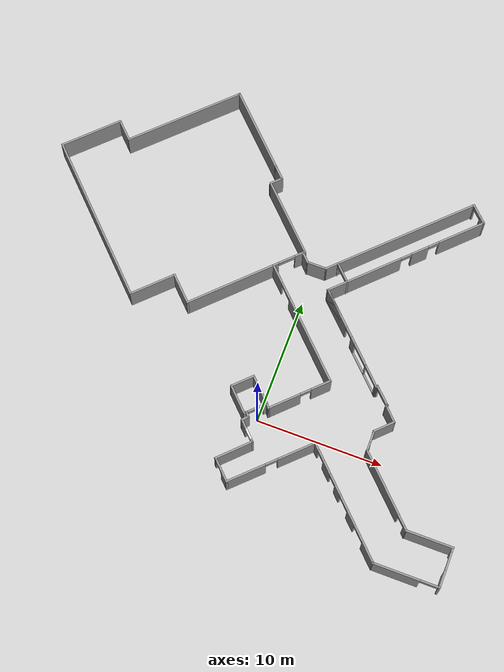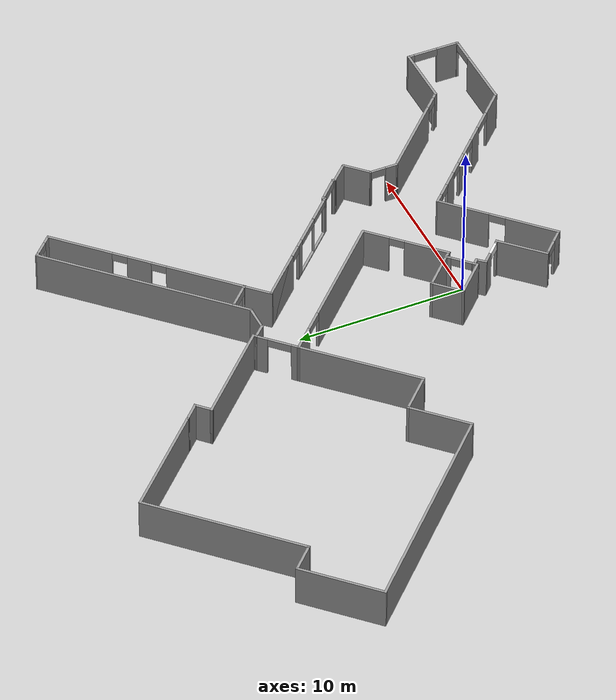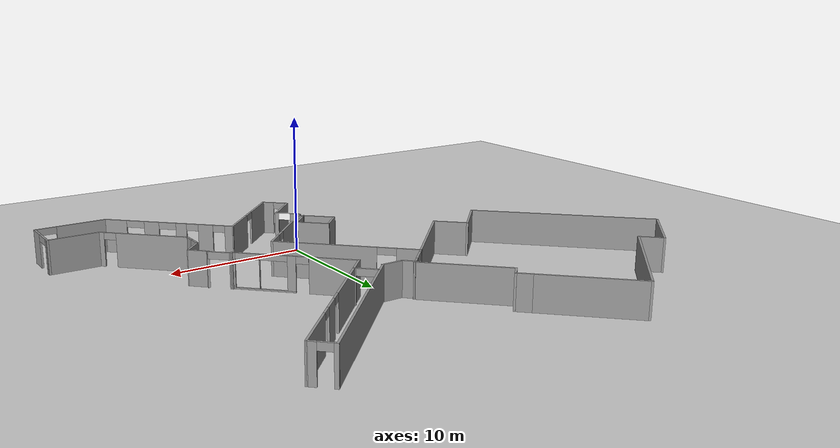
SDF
<sdf version="1.7">
 <world name="default">
  <light name="sun" type="directional">
   <pose>0 0 10 0 -0 0</pose>
   <diffuse>0.8 0.8 0.8 1</diffuse>
   <specular>0.2 0.2 0.2 1</specular>
   <attenuation>
    <range>1000</range>
    <constant>0.9</constant>
    <linear>0.01</linear>
    <quadratic>0.001</quadratic>
   </attenuation>
   <direction>-0.5 0.1 -0.9</direction>
   <spot><inner_angle>0</inner_angle><outer_angle>0</outer_angle><falloff>0</falloff></spot>
  </light>
  <model name="ground_plane">
   <static>1</static>
   <link name="link">
    <collision name="collision">
     <geometry><plane><normal>0 0 1</normal><size>100 100</size></plane></geometry>
     <surface><friction><ode><mu>100</mu><mu2>50</mu2></ode></friction></surface>
    </collision>
    <visual name="visual">
     <cast_shadows>0</cast_shadows>
     <geometry><plane><normal>0 0 1</normal><size>100 100</size></plane></geometry>
     <material>
      <script><uri>file://media/materials/scripts/gazebo.material</uri><name>Gazebo/Grey</name></script>
     </material>
    </visual>
   </link>
  </model>
  <gravity>0 0 -9.8</gravity>
  <magnetic_field>6e-06 2.3e-05 -4.2e-05</magnetic_field>
  <atmosphere type="adiabatic"/>
  <physics type="ode">
   <max_step_size>0.001</max_step_size>
   <real_time_factor>1</real_time_factor>
   <real_time_update_rate>1000</real_time_update_rate>
  </physics>
  <scene><ambient>0.4 0.4 0.4 1</ambient><background>0.7 0.7 0.7 1</background><shadows>1</shadows></scene>
  <audio><device>default</device></audio>
  <spherical_coordinates>
   <surface_model>EARTH_WGS84</surface_model>
   <latitude_deg>0</latitude_deg>
   <longitude_deg>0</longitude_deg>
   <elevation>0</elevation>
   <heading_deg>0</heading_deg>
  </spherical_coordinates>
  <model name="Arendal UETG">
   <pose>-2.58059 8.23058 0 0 -0 0</pose>
   <link name="Wall_1">
    <collision name="Wall_1_Collision">
     <geometry><box><size>2.5 0.15 2.5</size></box></geometry>
     <pose>0 0 1.25 0 -0 0</pose>
    </collision>
    <visual name="Wall_1_Visual">
     <pose>0 0 1.25 0 -0 0</pose>
     <geometry><box><size>2.5 0.15 2.5</size></box></geometry>
     <material>
      <script><uri>file://media/materials/scripts/gazebo.material</uri><name>Gazebo/Grey</name></script>
      <ambient>1 1 1 1</ambient>
     </material>
     <meta><layer>0</layer></meta>
    </visual>
    <pose>0.872614 -7.83837 0 0 -0 -0.785398</pose>
   </link>
   <link name="Wall_100">
    <collision name="Wall_100_Collision">
     <geometry><box><size>7.40567 0.15 2.5</size></box></geometry>
     <pose>0 0 1.25 0 -0 0</pose>
    </collision>
    <visual name="Wall_100_Visual">
     <pose>0 0 1.25 0 -0 0</pose>
     <geometry><box><size>7.40567 0.15 2.5</size></box></geometry>
     <material>
      <script><uri>file://media/materials/scripts/gazebo.material</uri><name>Gazebo/Grey</name></script>
      <ambient>1 1 1 1</ambient>
     </material>
     <meta><layer>0</layer></meta>
    </visual>
    <pose>-2.90681 0.604279 0 0 -0 0.789004</pose>
   </link>
   <link name="Wall_13">
    <pose>2.38064 -9.85032 0 0 -0 -0.785398</pose>
    <visual name="Wall_13_Visual_0">
     <pose>-0.594578 0 1.25 0 -0 0</pose>
     <geometry><box><size>0.810844 0.15 2.5</size></box></geometry>
     <material>
      <script><uri>file://media/materials/scripts/gazebo.material</uri><name>Gazebo/Grey</name></script>
      <ambient>1 1 1 1</ambient>
     </material>
     <meta><layer>0</layer></meta>
    </visual>
    <collision name="Wall_13_Collision_0">
     <geometry><box><size>0.810844 0.15 2.5</size></box></geometry>
     <pose>-0.594578 0 1.25 0 -0 0</pose>
    </collision>
    <visual name="Wall_13_Visual_1">
     <pose>0.855422 0 1.25 0 -0 0</pose>
     <geometry><box><size>0.289156 0.15 2.5</size></box></geometry>
     <material>
      <script><uri>file://media/materials/scripts/gazebo.material</uri><name>Gazebo/Grey</name></script>
      <ambient>1 1 1 1</ambient>
     </material>
     <meta><layer>0</layer></meta>
    </visual>
    <collision name="Wall_13_Collision_1">
     <geometry><box><size>0.289156 0.15 2.5</size></box></geometry>
     <pose>0.855422 0 1.25 0 -0 0</pose>
    </collision>
    <visual name="Wall_13_Visual_2">
     <pose>0.260844 0 2.25 0 -0 0</pose>
     <geometry><box><size>0.9 0.15 0.5</size></box></geometry>
     <material>
      <ambient>1 1 1 1</ambient>
      <diffuse>1 1 1 1</diffuse>
      <pbr>
       <metal>
        <albedo_map>file:///home/group4/YOLO_Datasets/Trolley/empty_trolley_vertical_cam1_20260211_142848.jpg</albedo_map>
       </metal>
      </pbr>
     </material>
     <meta><layer>0</layer></meta>
    </visual>
    <collision name="Wall_13_Collision_2">
     <geometry><box><size>0.9 0.15 0.5</size></box></geometry>
     <pose>0.260844 0 2.25 0 -0 0</pose>
    </collision>
   </link>
   <link name="Wall_14">
    <collision name="Wall_14_Collision">
     <geometry><box><size>3.1304 0.15 2.5</size></box></geometry>
     <pose>0 0 1.25 0 -0 0</pose>
    </collision>
    <visual name="Wall_14_Visual">
     <pose>0 0 1.25 0 -0 0</pose>
     <geometry><box><size>3.1304 0.15 2.5</size></box></geometry>
     <material>
      <script><uri>file://media/materials/scripts/gazebo.material</uri><name>Gazebo/Grey</name></script>
      <ambient>1 1 1 1</ambient>
     </material>
     <meta><layer>0</layer></meta>
    </visual>
    <pose>1.97947 -11.5623 0 0 -0 -2.35218</pose>
   </link>
   <link name="Wall_15">
    <pose>1.62701 -13.3097 0 0 -0 -0.785398</pose>
    <visual name="Wall_15_Visual_0">
     <pose>-0.926051 0 1.25 0 -0 0</pose>
     <geometry><box><size>0.247898 0.15 2.5</size></box></geometry>
     <material>
      <script><uri>file://media/materials/scripts/gazebo.material</uri><name>Gazebo/Grey</name></script>
      <ambient>1 1 1 1</ambient>
     </material>
     <meta><layer>0</layer></meta>
    </visual>
    <collision name="Wall_15_Collision_0">
     <geometry><box><size>0.247898 0.15 2.5</size></box></geometry>
     <pose>-0.926051 0 1.25 0 -0 0</pose>
    </collision>
    <visual name="Wall_15_Visual_1">
     <pose>0.573949 0 1.25 0 -0 0</pose>
     <geometry><box><size>0.952102 0.15 2.5</size></box></geometry>
     <material>
      <script><uri>file://media/materials/scripts/gazebo.material</uri><name>Gazebo/Grey</name></script>
      <ambient>1 1 1 1</ambient>
     </material>
     <meta><layer>0</layer></meta>
    </visual>
    <collision name="Wall_15_Collision_1">
     <geometry><box><size>0.952102 0.15 2.5</size></box></geometry>
     <pose>0.573949 0 1.25 0 -0 0</pose>
    </collision>
    <visual name="Wall_15_Visual_2">
     <pose>-0.352102 0 2.25 0 -0 0</pose>
     <geometry><box><size>0.9 0.15 0.5</size></box></geometry>
     <material>
      <script><uri>file://media/materials/scripts/gazebo.material</uri><name>Gazebo/Grey</name></script>
      <ambient>1 1 1 1</ambient>
     </material>
     <meta><layer>0</layer></meta>
    </visual>
    <collision name="Wall_15_Collision_2">
     <geometry><box><size>0.9 0.15 0.5</size></box></geometry>
     <pose>-0.352102 0 2.25 0 -0 0</pose>
    </collision>
   </link>
   <link name="Wall_17">
    <pose>4.8759 -11.4735 0 0 -0 0.777263</pose>
    <visual name="Wall_17_Visual_0">
     <pose>-2.06667 0 1.25 0 -0 0</pose>
     <geometry><box><size>3.21906 0.15 2.5</size></box></geometry>
     <material>
      <script><uri>file://media/materials/scripts/gazebo.material</uri><name>Gazebo/Grey</name></script>
      <ambient>1 1 1 1</ambient>
     </material>
     <meta><layer>0</layer></meta>
    </visual>
    <collision name="Wall_17_Collision_0">
     <geometry><box><size>3.21906 0.15 2.5</size></box></geometry>
     <pose>-2.06667 0 1.25 0 -0 0</pose>
    </collision>
    <visual name="Wall_17_Visual_1">
     <pose>2.10276 0 1.25 0 -0 0</pose>
     <geometry><box><size>3.14688 0.15 2.5</size></box></geometry>
     <material>
      <script><uri>file://media/materials/scripts/gazebo.material</uri><name>Gazebo/Grey</name></script>
      <ambient>1 1 1 1</ambient>
     </material>
     <meta><layer>0</layer></meta>
    </visual>
    <collision name="Wall_17_Collision_1">
     <geometry><box><size>3.14688 0.15 2.5</size></box></geometry>
     <pose>2.10276 0 1.25 0 -0 0</pose>
    </collision>
    <visual name="Wall_17_Visual_2">
     <pose>0.036092 0 2.25 0 -0 0</pose>
     <geometry><box><size>0.986468 0.15 0.5</size></box></geometry>
     <material>
      <script><uri>file://media/materials/scripts/gazebo.material</uri><name>Gazebo/Grey</name></script>
      <ambient>1 1 1 1</ambient>
     </material>
     <meta><layer>0</layer></meta>
    </visual>
    <collision name="Wall_17_Collision_2">
     <geometry><box><size>0.986468 0.15 0.5</size></box></geometry>
     <pose>0.036092 0 2.25 0 -0 0</pose>
    </collision>
   </link>
   <link name="Wall_19">
    <pose>10.9255 -12.4304 0 0 -0 -0.785398</pose>
    <visual name="Wall_19_Visual_0">
     <pose>-4.66999 0 1.25 0 -0 0</pose>
     <geometry><box><size>0.660029 0.15 2.5</size></box></geometry>
     <material>
      <script><uri>file://media/materials/scripts/gazebo.material</uri><name>Gazebo/Grey</name></script>
      <ambient>1 1 1 1</ambient>
     </material>
     <meta><layer>0</layer></meta>
    </visual>
    <collision name="Wall_19_Collision_0">
     <geometry><box><size>0.660029 0.15 2.5</size></box></geometry>
     <pose>-4.66999 0 1.25 0 -0 0</pose>
    </collision>
    <visual name="Wall_19_Visual_1">
     <pose>-2.88465 0 1.25 0 -0 0</pose>
     <geometry><box><size>1.11064 0.15 2.5</size></box></geometry>
     <material>
      <script><uri>file://media/materials/scripts/gazebo.material</uri><name>Gazebo/Grey</name></script>
      <ambient>1 1 1 1</ambient>
     </material>
     <meta><layer>0</layer></meta>
    </visual>
    <collision name="Wall_19_Collision_1">
     <geometry><box><size>1.11064 0.15 2.5</size></box></geometry>
     <pose>-2.88465 0 1.25 0 -0 0</pose>
    </collision>
    <visual name="Wall_19_Visual_2">
     <pose>-1.02004 0 1.25 0 -0 0</pose>
     <geometry><box><size>0.818577 0.15 2.5</size></box></geometry>
     <material>
      <script><uri>file://media/materials/scripts/gazebo.material</uri><name>Gazebo/Grey</name></script>
      <ambient>1 1 1 1</ambient>
     </material>
     <meta><layer>0</layer></meta>
    </visual>
    <collision name="Wall_19_Collision_2">
     <geometry><box><size>0.818577 0.15 2.5</size></box></geometry>
     <pose>-1.02004 0 1.25 0 -0 0</pose>
    </collision>
    <visual name="Wall_19_Visual_3">
     <pose>1.27085 0 1.25 0 -0 0</pose>
     <geometry><box><size>1.15157 0.15 2.5</size></box></geometry>
     <material>
      <script><uri>file://media/materials/scripts/gazebo.material</uri><name>Gazebo/Grey</name></script>
      <ambient>1 1 1 1</ambient>
     </material>
     <meta><layer>0</layer></meta>
    </visual>
    <collision name="Wall_19_Collision_3">
     <geometry><box><size>1.15157 0.15 2.5</size></box></geometry>
     <pose>1.27085 0 1.25 0 -0 0</pose>
    </collision>
    <visual name="Wall_19_Visual_4">
     <pose>4.10799 0 1.25 0 -0 0</pose>
     <geometry><box><size>1.78402 0.15 2.5</size></box></geometry>
     <material>
      <script><uri>file://media/materials/scripts/gazebo.material</uri><name>Gazebo/Grey</name></script>
      <ambient>1 1 1 1</ambient>
     </material>
     <meta><layer>0</layer></meta>
    </visual>
    <collision name="Wall_19_Collision_4">
     <geometry><box><size>1.78402 0.15 2.5</size></box></geometry>
     <pose>4.10799 0 1.25 0 -0 0</pose>
    </collision>
    <visual name="Wall_19_Visual_5">
     <pose>-3.88997 0 2.25 0 -0 0</pose>
     <geometry><box><size>0.9 0.15 0.5</size></box></geometry>
     <material>
      <script><uri>file://media/materials/scripts/gazebo.material</uri><name>Gazebo/Grey</name></script>
      <ambient>1 1 1 1</ambient>
     </material>
     <meta><layer>0</layer></meta>
    </visual>
    <collision name="Wall_19_Collision_5">
     <geometry><box><size>0.9 0.15 0.5</size></box></geometry>
     <pose>-3.88997 0 2.25 0 -0 0</pose>
    </collision>
    <visual name="Wall_19_Visual_6">
     <pose>-1.87933 0 2.25 0 -0 0</pose>
     <geometry><box><size>0.9 0.15 0.5</size></box></geometry>
     <material>
      <script><uri>file://media/materials/scripts/gazebo.material</uri><name>Gazebo/Grey</name></script>
      <ambient>1 1 1 1</ambient>
     </material>
     <meta><layer>0</layer></meta>
    </visual>
    <collision name="Wall_19_Collision_6">
     <geometry><box><size>0.9 0.15 0.5</size></box></geometry>
     <pose>-1.87933 0 2.25 0 -0 0</pose>
    </collision>
    <visual name="Wall_19_Visual_7">
     <pose>0.042158 0 2.25 0 -0 0</pose>
     <geometry><box><size>1.30582 0.15 0.5</size></box></geometry>
     <material>
      <script><uri>file://media/materials/scripts/gazebo.material</uri><name>Gazebo/Grey</name></script>
      <ambient>1 1 1 1</ambient>
     </material>
     <meta><layer>0</layer></meta>
    </visual>
    <collision name="Wall_19_Collision_7">
     <geometry><box><size>1.30582 0.15 0.5</size></box></geometry>
     <pose>0.042158 0 2.25 0 -0 0</pose>
    </collision>
    <visual name="Wall_19_Visual_8">
     <pose>2.53131 0 2.25 0 -0 0</pose>
     <geometry><box><size>1.36934 0.15 0.5</size></box></geometry>
     <material>
      <script><uri>file://media/materials/scripts/gazebo.material</uri><name>Gazebo/Grey</name></script>
      <ambient>1 1 1 1</ambient>
     </material>
     <meta><layer>0</layer></meta>
    </visual>
    <collision name="Wall_19_Collision_8">
     <geometry><box><size>1.36934 0.15 0.5</size></box></geometry>
     <pose>2.53131 0 2.25 0 -0 0</pose>
    </collision>
   </link>
   <link name="Wall_2">
    <pose>2.35754 -8.01515 0 0 -0 0.785398</pose>
    <visual name="Wall_2_Visual_0">
     <pose>-0.810429 0 1.25 0 -0 0</pose>
     <geometry><box><size>0.379141 0.15 2.5</size></box></geometry>
     <material>
      <script><uri>file://media/materials/scripts/gazebo.material</uri><name>Gazebo/Grey</name></script>
      <ambient>1 1 1 1</ambient>
     </material>
     <meta><layer>0</layer></meta>
    </visual>
    <collision name="Wall_2_Collision_0">
     <geometry><box><size>0.379141 0.15 2.5</size></box></geometry>
     <pose>-0.810429 0 1.25 0 -0 0</pose>
    </collision>
    <visual name="Wall_2_Visual_1">
     <pose>0.812085 0 1.25 0 -0 0</pose>
     <geometry><box><size>0.37583 0.15 2.5</size></box></geometry>
     <material>
      <script><uri>file://media/materials/scripts/gazebo.material</uri><name>Gazebo/Grey</name></script>
      <ambient>1 1 1 1</ambient>
     </material>
     <meta><layer>0</layer></meta>
    </visual>
    <collision name="Wall_2_Collision_1">
     <geometry><box><size>0.37583 0.15 2.5</size></box></geometry>
     <pose>0.812085 0 1.25 0 -0 0</pose>
    </collision>
    <visual name="Wall_2_Visual_2">
     <pose>0.001656 0 2.25 0 -0 0</pose>
     <geometry><box><size>1.24503 0.15 0.5</size></box></geometry>
     <material>
      <script><uri>file://media/materials/scripts/gazebo.material</uri><name>Gazebo/Grey</name></script>
      <ambient>1 1 1 1</ambient>
     </material>
     <meta><layer>0</layer></meta>
    </visual>
    <collision name="Wall_2_Collision_2">
     <geometry><box><size>1.24503 0.15 0.5</size></box></geometry>
     <pose>0.001656 0 2.25 0 -0 0</pose>
    </collision>
   </link>
   <link name="Wall_20">
    <pose>16.958 -15.9129 0 0 -0 0</pose>
    <visual name="Wall_20_Visual_0">
     <pose>-0.786865 0 1.25 0 -0 0</pose>
     <geometry><box><size>3.67627 0.15 2.5</size></box></geometry>
     <material>
      <script><uri>file://media/materials/scripts/gazebo.material</uri><name>Gazebo/Grey</name></script>
      <ambient>1 1 1 1</ambient>
     </material>
     <meta><layer>0</layer></meta>
    </visual>
    <collision name="Wall_20_Collision_0">
     <geometry><box><size>3.67627 0.15 2.5</size></box></geometry>
     <pose>-0.786865 0 1.25 0 -0 0</pose>
    </collision>
    <visual name="Wall_20_Visual_1">
     <pose>2.53814 0 1.25 0 -0 0</pose>
     <geometry><box><size>0.17373 0.15 2.5</size></box></geometry>
     <material>
      <script><uri>file://media/materials/scripts/gazebo.material</uri><name>Gazebo/Grey</name></script>
      <ambient>1 1 1 1</ambient>
     </material>
     <meta><layer>0</layer></meta>
    </visual>
    <collision name="Wall_20_Collision_1">
     <geometry><box><size>0.17373 0.15 2.5</size></box></geometry>
     <pose>2.53814 0 1.25 0 -0 0</pose>
    </collision>
    <visual name="Wall_20_Visual_2">
     <pose>1.75127 0 2.25 0 -0 0</pose>
     <geometry><box><size>1.4 0.15 0.5</size></box></geometry>
     <material>
      <script><uri>file://media/materials/scripts/gazebo.material</uri><name>Gazebo/Grey</name></script>
      <ambient>1 1 1 1</ambient>
     </material>
     <meta><layer>0</layer></meta>
    </visual>
    <collision name="Wall_20_Collision_2">
     <geometry><box><size>1.4 0.15 0.5</size></box></geometry>
     <pose>1.75127 0 2.25 0 -0 0</pose>
    </collision>
   </link>
   <link name="Wall_21">
    <pose>19.508 -14.3629 0 0 -0 1.5708</pose>
    <visual name="Wall_21_Visual_0">
     <pose>-0.920937 0 1.25 0 -0 0</pose>
     <geometry><box><size>1.40813 0.15 2.5</size></box></geometry>
     <material>
      <script><uri>file://media/materials/scripts/gazebo.material</uri><name>Gazebo/Grey</name></script>
      <ambient>1 1 1 1</ambient>
     </material>
     <meta><layer>0</layer></meta>
    </visual>
    <collision name="Wall_21_Collision_0">
     <geometry><box><size>1.40813 0.15 2.5</size></box></geometry>
     <pose>-0.920937 0 1.25 0 -0 0</pose>
    </collision>
    <visual name="Wall_21_Visual_1">
     <pose>1.41554 0 1.25 0 -0 0</pose>
     <geometry><box><size>0.418921 0.15 2.5</size></box></geometry>
     <material>
      <script><uri>file://media/materials/scripts/gazebo.material</uri><name>Gazebo/Grey</name></script>
      <ambient>1 1 1 1</ambient>
     </material>
     <meta><layer>0</layer></meta>
    </visual>
    <collision name="Wall_21_Collision_1">
     <geometry><box><size>0.418921 0.15 2.5</size></box></geometry>
     <pose>1.41554 0 1.25 0 -0 0</pose>
    </collision>
    <visual name="Wall_21_Visual_2">
     <pose>0.494602 0 2.25 0 -0 0</pose>
     <geometry><box><size>1.42295 0.15 0.5</size></box></geometry>
     <material>
      <script><uri>file://media/materials/scripts/gazebo.material</uri><name>Gazebo/Grey</name></script>
      <ambient>1 1 1 1</ambient>
     </material>
     <meta><layer>0</layer></meta>
    </visual>
    <collision name="Wall_21_Collision_2">
     <geometry><box><size>1.42295 0.15 0.5</size></box></geometry>
     <pose>0.494602 0 2.25 0 -0 0</pose>
    </collision>
   </link>
   <link name="Wall_22">
    <collision name="Wall_22_Collision">
     <geometry><box><size>3.75 0.15 2.5</size></box></geometry>
     <pose>0 0 1.25 0 -0 0</pose>
    </collision>
    <visual name="Wall_22_Visual">
     <pose>0 0 1.25 0 -0 0</pose>
     <geometry><box><size>3.75 0.15 2.5</size></box></geometry>
     <material>
      <script><uri>file://media/materials/scripts/gazebo.material</uri><name>Gazebo/Grey</name></script>
      <ambient>1 1 1 1</ambient>
     </material>
     <meta><layer>0</layer></meta>
    </visual>
    <pose>17.708 -12.8129 0 0 -0 3.14159</pose>
   </link>
   <link name="Wall_24">
    <pose>13.5745 -10.4794 0 0 -0 2.35619</pose>
    <visual name="Wall_24_Visual_0">
     <pose>-3.14468 0 1.25 0 -0 0</pose>
     <geometry><box><size>0.460646 0.15 2.5</size></box></geometry>
     <material>
      <script><uri>file://media/materials/scripts/gazebo.material</uri><name>Gazebo/Grey</name></script>
      <ambient>1 1 1 1</ambient>
     </material>
     <meta><layer>0</layer></meta>
    </visual>
    <collision name="Wall_24_Collision_0">
     <geometry><box><size>0.460646 0.15 2.5</size></box></geometry>
     <pose>-3.14468 0 1.25 0 -0 0</pose>
    </collision>
    <visual name="Wall_24_Visual_1">
     <pose>0.680323 0 1.25 0 -0 0</pose>
     <geometry><box><size>5.38935 0.15 2.5</size></box></geometry>
     <material>
      <script><uri>file://media/materials/scripts/gazebo.material</uri><name>Gazebo/Grey</name></script>
      <ambient>1 1 1 1</ambient>
     </material>
     <meta><layer>0</layer></meta>
    </visual>
    <collision name="Wall_24_Collision_1">
     <geometry><box><size>5.38935 0.15 2.5</size></box></geometry>
     <pose>0.680323 0 1.25 0 -0 0</pose>
    </collision>
    <visual name="Wall_24_Visual_2">
     <pose>-2.46435 0 2.25 0 -0 0</pose>
     <geometry><box><size>0.9 0.15 0.5</size></box></geometry>
     <material>
      <script><uri>file://media/materials/scripts/gazebo.material</uri><name>Gazebo/Grey</name></script>
      <ambient>1 1 1 1</ambient>
     </material>
     <meta><layer>0</layer></meta>
    </visual>
    <collision name="Wall_24_Collision_2">
     <geometry><box><size>0.9 0.15 0.5</size></box></geometry>
     <pose>-2.46435 0 2.25 0 -0 0</pose>
    </collision>
   </link>
   <link name="Wall_25">
    <pose>11.2411 -7.3461 0 0 -0 1.57072</pose>
    <visual name="Wall_25_Visual_0">
     <pose>-0.497681 0 1.25 0 -0 0</pose>
     <geometry><box><size>0.754637 0.15 2.5</size></box></geometry>
     <material>
      <script><uri>file://media/materials/scripts/gazebo.material</uri><name>Gazebo/Grey</name></script>
      <ambient>1 1 1 1</ambient>
     </material>
     <meta><layer>0</layer></meta>
    </visual>
    <collision name="Wall_25_Collision_0">
     <geometry><box><size>0.754637 0.15 2.5</size></box></geometry>
     <pose>-0.497681 0 1.25 0 -0 0</pose>
    </collision>
    <visual name="Wall_25_Visual_1">
     <pose>0.827319 0 1.25 0 -0 0</pose>
     <geometry><box><size>0.095363 0.15 2.5</size></box></geometry>
     <material>
      <script><uri>file://media/materials/scripts/gazebo.material</uri><name>Gazebo/Grey</name></script>
      <ambient>1 1 1 1</ambient>
     </material>
     <meta><layer>0</layer></meta>
    </visual>
    <collision name="Wall_25_Collision_1">
     <geometry><box><size>0.095363 0.15 2.5</size></box></geometry>
     <pose>0.827319 0 1.25 0 -0 0</pose>
    </collision>
    <visual name="Wall_25_Visual_2">
     <pose>0.329637 0 2.25 0 -0 0</pose>
     <geometry><box><size>0.9 0.15 0.5</size></box></geometry>
     <material>
      <script><uri>file://media/materials/scripts/gazebo.material</uri><name>Gazebo/Grey</name></script>
      <ambient>1 1 1 1</ambient>
     </material>
     <meta><layer>0</layer></meta>
    </visual>
    <collision name="Wall_25_Collision_2">
     <geometry><box><size>0.9 0.15 0.5</size></box></geometry>
     <pose>0.329637 0 2.25 0 -0 0</pose>
    </collision>
   </link>
   <link name="Wall_27">
    <collision name="Wall_27_Collision">
     <geometry><box><size>1.8 0.15 2.5</size></box></geometry>
     <pose>0 0 1.25 0 -0 0</pose>
    </collision>
    <visual name="Wall_27_Visual">
     <pose>0 0 1.25 0 -0 0</pose>
     <geometry><box><size>1.8 0.15 2.5</size></box></geometry>
     <material>
      <script><uri>file://media/materials/scripts/gazebo.material</uri><name>Gazebo/Grey</name></script>
      <ambient>1 1 1 1</ambient>
     </material>
     <meta><layer>0</layer></meta>
    </visual>
    <pose>11.8247 -5.96272 0 0 -0 0.785398</pose>
   </link>
   <link name="Wall_3">
    <collision name="Wall_3_Collision">
     <geometry><box><size>2.5 0.15 2.5</size></box></geometry>
     <pose>0 0 1.25 0 -0 0</pose>
    </collision>
    <visual name="Wall_3_Visual">
     <pose>0 0 1.25 0 -0 0</pose>
     <geometry><box><size>2.5 0.15 2.5</size></box></geometry>
     <material>
      <script><uri>file://media/materials/scripts/gazebo.material</uri><name>Gazebo/Grey</name></script>
      <ambient>1 1 1 1</ambient>
     </material>
     <meta><layer>0</layer></meta>
    </visual>
    <pose>2.18076 -6.53022 0 0 -0 2.35619</pose>
   </link>
   <link name="Wall_36">
    <collision name="Wall_36_Collision">
     <geometry><box><size>1.50097 0.15 2.5</size></box></geometry>
     <pose>0 0 1.25 0 -0 0</pose>
    </collision>
    <visual name="Wall_36_Visual">
     <pose>0 0 1.25 0 -0 0</pose>
     <geometry><box><size>1.50097 0.15 2.5</size></box></geometry>
     <material>
      <script><uri>file://media/materials/scripts/gazebo.material</uri><name>Gazebo/Grey</name></script>
      <ambient>1 1 1 1</ambient>
     </material>
     <meta><layer>0</layer></meta>
    </visual>
    <pose>11.936 -4.89602 0 0 -0 2.34467</pose>
   </link>
   <link name="Wall_4">
    <collision name="Wall_4_Collision">
     <geometry><box><size>2 0.15 2.5</size></box></geometry>
     <pose>0 0 1.25 0 -0 0</pose>
    </collision>
    <visual name="Wall_4_Visual">
     <pose>0 0 1.25 0 -0 0</pose>
     <geometry><box><size>2 0.15 2.5</size></box></geometry>
     <material>
      <script><uri>file://media/materials/scripts/gazebo.material</uri><name>Gazebo/Grey</name></script>
      <ambient>1 1 1 1</ambient>
     </material>
     <meta><layer>0</layer></meta>
    </visual>
    <pose>0.695837 -6.35345 0 0 -0 -2.35619</pose>
   </link>
   <link name="Wall_41">
    <collision name="Wall_41_Collision">
     <geometry><box><size>0.25 0.15 2.5</size></box></geometry>
     <pose>0 0 1.25 0 -0 0</pose>
    </collision>
    <visual name="Wall_41_Visual">
     <pose>0 0 1.25 0 -0 0</pose>
     <geometry><box><size>0.25 0.15 2.5</size></box></geometry>
     <material>
      <script><uri>file://media/materials/scripts/gazebo.material</uri><name>Gazebo/Grey</name></script>
      <ambient>1 1 1 1</ambient>
     </material>
     <meta><layer>0</layer></meta>
    </visual>
    <pose>11.4767 -4.36452 0 0 -0 1.309</pose>
   </link>
   <link name="Wall_42">
    <pose>10.9078 -3.74464 0 0 -0 2.37022</pose>
    <visual name="Wall_42_Visual_0">
     <pose>-0.855084 0 1.25 0 -0 0</pose>
     <geometry><box><size>0.063172 0.15 2.5</size></box></geometry>
     <material>
      <script><uri>file://media/materials/scripts/gazebo.material</uri><name>Gazebo/Grey</name></script>
      <ambient>1 1 1 1</ambient>
     </material>
     <meta><layer>0</layer></meta>
    </visual>
    <collision name="Wall_42_Collision_0">
     <geometry><box><size>0.063172 0.15 2.5</size></box></geometry>
     <pose>-0.855084 0 1.25 0 -0 0</pose>
    </collision>
    <visual name="Wall_42_Visual_1">
     <pose>0.777367 0 1.25 0 -0 0</pose>
     <geometry><box><size>0.218607 0.15 2.5</size></box></geometry>
     <material>
      <script><uri>file://media/materials/scripts/gazebo.material</uri><name>Gazebo/Grey</name></script>
      <ambient>1 1 1 1</ambient>
     </material>
     <meta><layer>0</layer></meta>
    </visual>
    <collision name="Wall_42_Collision_1">
     <geometry><box><size>0.218607 0.15 2.5</size></box></geometry>
     <pose>0.777367 0 1.25 0 -0 0</pose>
    </collision>
    <visual name="Wall_42_Visual_2">
     <pose>-0.077717 0 2.25 0 -0 0</pose>
     <geometry><box><size>1.49156 0.15 0.5</size></box></geometry>
     <material>
      <script><uri>file://media/materials/scripts/gazebo.material</uri><name>Gazebo/Grey</name></script>
      <ambient>1 1 1 1</ambient>
     </material>
     <meta><layer>0</layer></meta>
    </visual>
    <collision name="Wall_42_Collision_2">
     <geometry><box><size>1.49156 0.15 0.5</size></box></geometry>
     <pose>-0.077717 0 2.25 0 -0 0</pose>
    </collision>
   </link>
   <link name="Wall_54">
    <collision name="Wall_54_Collision">
     <geometry><box><size>0.251329 0.15 2.5</size></box></geometry>
     <pose>0 0 1.25 0 -0 0</pose>
    </collision>
    <visual name="Wall_54_Visual">
     <pose>0 0 1.25 0 -0 0</pose>
     <geometry><box><size>0.251329 0.15 2.5</size></box></geometry>
     <material>
      <script><uri>file://media/materials/scripts/gazebo.material</uri><name>Gazebo/Grey</name></script>
      <ambient>1 1 1 1</ambient>
     </material>
     <meta><layer>0</layer></meta>
    </visual>
    <pose>10.296 -3.22002 0 0 -0 -2.19722</pose>
   </link>
   <link name="Wall_55">
    <pose>7.27124 -0.255721 0 0 -0 2.35444</pose>
    <visual name="Wall_55_Visual_0">
     <pose>-4.17208 0 1.25 0 -0 0</pose>
     <geometry><box><size>0.291755 0.15 2.5</size></box></geometry>
     <material>
      <script><uri>file://media/materials/scripts/gazebo.material</uri><name>Gazebo/Grey</name></script>
      <ambient>1 1 1 1</ambient>
     </material>
     <meta><layer>0</layer></meta>
    </visual>
    <collision name="Wall_55_Collision_0">
     <geometry><box><size>0.291755 0.15 2.5</size></box></geometry>
     <pose>-4.17208 0 1.25 0 -0 0</pose>
    </collision>
    <visual name="Wall_55_Visual_1">
     <pose>2.64145 0 1.25 0 -0 0</pose>
     <geometry><box><size>3.35302 0.15 2.5</size></box></geometry>
     <material>
      <script><uri>file://media/materials/scripts/gazebo.material</uri><name>Gazebo/Grey</name></script>
      <ambient>1 1 1 1</ambient>
     </material>
     <meta><layer>0</layer></meta>
    </visual>
    <collision name="Wall_55_Collision_1">
     <geometry><box><size>3.35302 0.15 2.5</size></box></geometry>
     <pose>2.64145 0 1.25 0 -0 0</pose>
    </collision>
    <visual name="Wall_55_Visual_2">
     <pose>3.07723 0 1.25 0 -0 0</pose>
     <geometry><box><size>2.48146 0.15 2.5</size></box></geometry>
     <material>
      <script><uri>file://media/materials/scripts/gazebo.material</uri><name>Gazebo/Grey</name></script>
      <ambient>1 1 1 1</ambient>
     </material>
     <meta><layer>0</layer></meta>
    </visual>
    <collision name="Wall_55_Collision_2">
     <geometry><box><size>2.48146 0.15 2.5</size></box></geometry>
     <pose>3.07723 0 1.25 0 -0 0</pose>
    </collision>
    <visual name="Wall_55_Visual_3">
     <pose>-1.96827 0 0.05 0 -0 0</pose>
     <geometry><box><size>4.11586 0.15 0.1</size></box></geometry>
     <material>
      <script><uri>file://media/materials/scripts/gazebo.material</uri><name>Gazebo/Grey</name></script>
      <ambient>1 1 1 1</ambient>
     </material>
     <meta><layer>0</layer></meta>
    </visual>
    <collision name="Wall_55_Collision_3">
     <geometry><box><size>4.11586 0.15 0.1</size></box></geometry>
     <pose>-1.96827 0 0.05 0 -0 0</pose>
    </collision>
    <visual name="Wall_55_Visual_4">
     <pose>-2.36195 0 1.3 0 -0 0</pose>
     <geometry><box><size>0.044507 0.15 2.4</size></box></geometry>
     <material>
      <script><uri>file://media/materials/scripts/gazebo.material</uri><name>Gazebo/Grey</name></script>
      <ambient>1 1 1 1</ambient>
     </material>
     <meta><layer>0</layer></meta>
    </visual>
    <collision name="Wall_55_Collision_4">
     <geometry><box><size>0.044507 0.15 2.4</size></box></geometry>
     <pose>-2.36195 0 1.3 0 -0 0</pose>
    </collision>
    <visual name="Wall_55_Visual_5">
     <pose>-0.19802 0 1.3 0 -0 0</pose>
     <geometry><box><size>0.575356 0.15 2.4</size></box></geometry>
     <material>
      <script><uri>file://media/materials/scripts/gazebo.material</uri><name>Gazebo/Grey</name></script>
      <ambient>1 1 1 1</ambient>
     </material>
     <meta><layer>0</layer></meta>
    </visual>
    <collision name="Wall_55_Collision_5">
     <geometry><box><size>0.575356 0.15 2.4</size></box></geometry>
     <pose>-0.19802 0 1.3 0 -0 0</pose>
    </collision>
    <visual name="Wall_55_Visual_6">
     <pose>0.522362 0 2.25 0 -0 0</pose>
     <geometry><box><size>0.865408 0.15 0.5</size></box></geometry>
     <material>
      <script><uri>file://media/materials/scripts/gazebo.material</uri><name>Gazebo/Grey</name></script>
      <ambient>1 1 1 1</ambient>
     </material>
     <meta><layer>0</layer></meta>
    </visual>
    <collision name="Wall_55_Collision_6">
     <geometry><box><size>0.865408 0.15 0.5</size></box></geometry>
     <pose>0.522362 0 2.25 0 -0 0</pose>
    </collision>
    <visual name="Wall_55_Visual_7">
     <pose>-3.2052 0 2.3 0 -0 0</pose>
     <geometry><box><size>1.642 0.15 0.4</size></box></geometry>
     <material>
      <script><uri>file://media/materials/scripts/gazebo.material</uri><name>Gazebo/Grey</name></script>
      <ambient>1 1 1 1</ambient>
     </material>
     <meta><layer>0</layer></meta>
    </visual>
    <collision name="Wall_55_Collision_7">
     <geometry><box><size>1.642 0.15 0.4</size></box></geometry>
     <pose>-3.2052 0 2.3 0 -0 0</pose>
    </collision>
    <visual name="Wall_55_Visual_8">
     <pose>-1.4127 0 2.3 0 -0 0</pose>
     <geometry><box><size>1.854 0.15 0.4</size></box></geometry>
     <material>
      <script><uri>file://media/materials/scripts/gazebo.material</uri><name>Gazebo/Grey</name></script>
      <ambient>1 1 1 1</ambient>
     </material>
     <meta><layer>0</layer></meta>
    </visual>
    <collision name="Wall_55_Collision_8">
     <geometry><box><size>1.854 0.15 0.4</size></box></geometry>
     <pose>-1.4127 0 2.3 0 -0 0</pose>
    </collision>
   </link>
   <link name="Wall_57">
    <pose>8.98622 7.46978 0 0 -0 0.785401</pose>
    <visual name="Wall_57_Visual_0">
     <pose>-3.59612 0 1.25 0 -0 0</pose>
     <geometry><box><size>6.30776 0.15 2.5</size></box></geometry>
     <material>
      <script><uri>file://media/materials/scripts/gazebo.material</uri><name>Gazebo/Grey</name></script>
      <ambient>1 1 1 1</ambient>
     </material>
     <meta><layer>0</layer></meta>
    </visual>
    <collision name="Wall_57_Collision_0">
     <geometry><box><size>6.30776 0.15 2.5</size></box></geometry>
     <pose>-3.59612 0 1.25 0 -0 0</pose>
    </collision>
    <visual name="Wall_57_Visual_1">
     <pose>1.17603 0 1.25 0 -0 0</pose>
     <geometry><box><size>1.43653 0.15 2.5</size></box></geometry>
     <material>
      <script><uri>file://media/materials/scripts/gazebo.material</uri><name>Gazebo/Grey</name></script>
      <ambient>1 1 1 1</ambient>
     </material>
     <meta><layer>0</layer></meta>
    </visual>
    <collision name="Wall_57_Collision_1">
     <geometry><box><size>1.43653 0.15 2.5</size></box></geometry>
     <pose>1.17603 0 1.25 0 -0 0</pose>
    </collision>
    <visual name="Wall_57_Visual_2">
     <pose>4.77215 0 1.25 0 -0 0</pose>
     <geometry><box><size>3.95571 0.15 2.5</size></box></geometry>
     <material>
      <script><uri>file://media/materials/scripts/gazebo.material</uri><name>Gazebo/Grey</name></script>
      <ambient>1 1 1 1</ambient>
     </material>
     <meta><layer>0</layer></meta>
    </visual>
    <collision name="Wall_57_Collision_2">
     <geometry><box><size>3.95571 0.15 2.5</size></box></geometry>
     <pose>4.77215 0 1.25 0 -0 0</pose>
    </collision>
    <visual name="Wall_57_Visual_3">
     <pose>0.007764 0 2.25 0 -0 0</pose>
     <geometry><box><size>0.9 0.15 0.5</size></box></geometry>
     <material>
      <script><uri>file://media/materials/scripts/gazebo.material</uri><name>Gazebo/Grey</name></script>
      <ambient>1 1 1 1</ambient>
     </material>
     <meta><layer>0</layer></meta>
    </visual>
    <collision name="Wall_57_Collision_3">
     <geometry><box><size>0.9 0.15 0.5</size></box></geometry>
     <pose>0.007764 0 2.25 0 -0 0</pose>
    </collision>
    <visual name="Wall_57_Visual_4">
     <pose>2.34429 0 2.25 0 -0 0</pose>
     <geometry><box><size>0.9 0.15 0.5</size></box></geometry>
     <material>
      <script><uri>file://media/materials/scripts/gazebo.material</uri><name>Gazebo/Grey</name></script>
      <ambient>1 1 1 1</ambient>
     </material>
     <meta><layer>0</layer></meta>
    </visual>
    <collision name="Wall_57_Collision_4">
     <geometry><box><size>0.9 0.15 0.5</size></box></geometry>
     <pose>2.34429 0 2.25 0 -0 0</pose>
    </collision>
   </link>
   <link name="Wall_59">
    <pose>13.1202 12.7698 0 0 -0 2.36134</pose>
    <visual name="Wall_59_Visual_0">
     <pose>-0.586702 0 1.25 0 -0 0</pose>
     <geometry><box><size>0.625591 0.15 2.5</size></box></geometry>
     <material>
      <script><uri>file://media/materials/scripts/gazebo.material</uri><name>Gazebo/Grey</name></script>
      <ambient>1 1 1 1</ambient>
     </material>
     <meta><layer>0</layer></meta>
    </visual>
    <collision name="Wall_59_Collision_0">
     <geometry><box><size>0.625591 0.15 2.5</size></box></geometry>
     <pose>-0.586702 0 1.25 0 -0 0</pose>
    </collision>
    <visual name="Wall_59_Visual_1">
     <pose>0.762795 0 1.25 0 -0 0</pose>
     <geometry><box><size>0.273404 0.15 2.5</size></box></geometry>
     <material>
      <script><uri>file://media/materials/scripts/gazebo.material</uri><name>Gazebo/Grey</name></script>
      <ambient>1 1 1 1</ambient>
     </material>
     <meta><layer>0</layer></meta>
    </visual>
    <collision name="Wall_59_Collision_1">
     <geometry><box><size>0.273404 0.15 2.5</size></box></geometry>
     <pose>0.762795 0 1.25 0 -0 0</pose>
    </collision>
    <visual name="Wall_59_Visual_2">
     <pose>0.176093 0 2.25 0 -0 0</pose>
     <geometry><box><size>0.9 0.15 0.5</size></box></geometry>
     <material>
      <script><uri>file://media/materials/scripts/gazebo.material</uri><name>Gazebo/Grey</name></script>
      <ambient>1 1 1 1</ambient>
     </material>
     <meta><layer>0</layer></meta>
    </visual>
    <collision name="Wall_59_Collision_2">
     <geometry><box><size>0.9 0.15 0.5</size></box></geometry>
     <pose>0.176093 0 2.25 0 -0 0</pose>
    </collision>
   </link>
   <link name="Wall_61">
    <collision name="Wall_61_Collision">
     <geometry><box><size>12.9 0.15 2.5</size></box></geometry>
     <pose>0 0 1.25 0 -0 0</pose>
    </collision>
    <visual name="Wall_61_Visual">
     <pose>0 0 1.25 0 -0 0</pose>
     <geometry><box><size>12.9 0.15 2.5</size></box></geometry>
     <material>
      <script><uri>file://media/materials/scripts/gazebo.material</uri><name>Gazebo/Grey</name></script>
      <ambient>1 1 1 1</ambient>
     </material>
     <meta><layer>0</layer></meta>
    </visual>
    <pose>8.02619 8.84178 0 0 -0 -2.35619</pose>
   </link>
   <link name="Wall_63">
    <collision name="Wall_63_Collision">
     <geometry><box><size>1.65 0.15 2.5</size></box></geometry>
     <pose>0 0 1.25 0 -0 0</pose>
    </collision>
    <visual name="Wall_63_Visual">
     <pose>0 0 1.25 0 -0 0</pose>
     <geometry><box><size>1.65 0.15 2.5</size></box></geometry>
     <material>
      <script><uri>file://media/materials/scripts/gazebo.material</uri><name>Gazebo/Grey</name></script>
      <ambient>1 1 1 1</ambient>
     </material>
     <meta><layer>0</layer></meta>
    </visual>
    <pose>2.76819 4.33378 0 0 -0 3.14159</pose>
   </link>
   <link name="Wall_65">
    <collision name="Wall_65_Collision">
     <geometry><box><size>1.00822 0.15 2.5</size></box></geometry>
     <pose>0 0 1.25 0 -0 0</pose>
    </collision>
    <visual name="Wall_65_Visual">
     <pose>0 0 1.25 0 -0 0</pose>
     <geometry><box><size>1.00822 0.15 2.5</size></box></geometry>
     <material>
      <script><uri>file://media/materials/scripts/gazebo.material</uri><name>Gazebo/Grey</name></script>
      <ambient>1 1 1 1</ambient>
     </material>
     <meta><layer>0</layer></meta>
    </visual>
    <pose>1.71769 4.64028 0 0 -0 2.34631</pose>
   </link>
   <link name="Wall_66">
    <pose>0.533187 4.06278 0 0 -0 -2.35619</pose>
    <visual name="Wall_66_Visual_0">
     <pose>-0.94471 0 1.25 0 -0 0</pose>
     <geometry><box><size>0.760581 0.15 2.5</size></box></geometry>
     <material>
      <script><uri>file://media/materials/scripts/gazebo.material</uri><name>Gazebo/Grey</name></script>
      <ambient>1 1 1 1</ambient>
     </material>
     <meta><layer>0</layer></meta>
    </visual>
    <collision name="Wall_66_Collision_0">
     <geometry><box><size>0.760581 0.15 2.5</size></box></geometry>
     <pose>-0.94471 0 1.25 0 -0 0</pose>
    </collision>
    <visual name="Wall_66_Visual_1">
     <pose>1.08029 0 1.25 0 -0 0</pose>
     <geometry><box><size>0.489419 0.15 2.5</size></box></geometry>
     <material>
      <script><uri>file://media/materials/scripts/gazebo.material</uri><name>Gazebo/Grey</name></script>
      <ambient>1 1 1 1</ambient>
     </material>
     <meta><layer>0</layer></meta>
    </visual>
    <collision name="Wall_66_Collision_1">
     <geometry><box><size>0.489419 0.15 2.5</size></box></geometry>
     <pose>1.08029 0 1.25 0 -0 0</pose>
    </collision>
    <visual name="Wall_66_Visual_2">
     <pose>0.135581 0 2.25 0 -0 0</pose>
     <geometry><box><size>1.4 0.15 0.5</size></box></geometry>
     <material>
      <script><uri>file://media/materials/scripts/gazebo.material</uri><name>Gazebo/Grey</name></script>
      <ambient>1 1 1 1</ambient>
     </material>
     <meta><layer>0</layer></meta>
    </visual>
    <collision name="Wall_66_Collision_2">
     <geometry><box><size>1.4 0.15 0.5</size></box></geometry>
     <pose>0.135581 0 2.25 0 -0 0</pose>
    </collision>
   </link>
   <link name="Wall_69">
    <pose>3.25919 -0.431221 0 0 -0 -0.785398</pose>
    <visual name="Wall_69_Visual_0">
     <pose>-4.33568 0 1.25 0 -0 0</pose>
     <geometry><box><size>1.68864 0.15 2.5</size></box></geometry>
     <material>
      <script><uri>file://media/materials/scripts/gazebo.material</uri><name>Gazebo/Grey</name></script>
      <ambient>1 1 1 1</ambient>
     </material>
     <meta><layer>0</layer></meta>
    </visual>
    <collision name="Wall_69_Collision_0">
     <geometry><box><size>1.68864 0.15 2.5</size></box></geometry>
     <pose>-4.33568 0 1.25 0 -0 0</pose>
    </collision>
    <visual name="Wall_69_Visual_1">
     <pose>1.51477 0 1.25 0 -0 0</pose>
     <geometry><box><size>7.33046 0.15 2.5</size></box></geometry>
     <material>
      <script><uri>file://media/materials/scripts/gazebo.material</uri><name>Gazebo/Grey</name></script>
      <ambient>1 1 1 1</ambient>
     </material>
     <meta><layer>0</layer></meta>
    </visual>
    <collision name="Wall_69_Collision_1">
     <geometry><box><size>7.33046 0.15 2.5</size></box></geometry>
     <pose>1.51477 0 1.25 0 -0 0</pose>
    </collision>
    <visual name="Wall_69_Visual_2">
     <pose>-2.82091 0 2.25 0 -0 0</pose>
     <geometry><box><size>1.3409 0.15 0.5</size></box></geometry>
     <material>
      <script><uri>file://media/materials/scripts/gazebo.material</uri><name>Gazebo/Grey</name></script>
      <ambient>1 1 1 1</ambient>
     </material>
     <meta><layer>0</layer></meta>
    </visual>
    <collision name="Wall_69_Collision_2">
     <geometry><box><size>1.3409 0.15 0.5</size></box></geometry>
     <pose>-2.82091 0 2.25 0 -0 0</pose>
    </collision>
   </link>
   <link name="Wall_71">
    <pose>5.06607 -5.84434 0 0 -0 -2.35619</pose>
    <visual name="Wall_71_Visual_0">
     <pose>-1.79842 0 1.25 0 -0 0</pose>
     <geometry><box><size>1.65317 0.15 2.5</size></box></geometry>
     <material>
      <script><uri>file://media/materials/scripts/gazebo.material</uri><name>Gazebo/Grey</name></script>
      <ambient>1 1 1 1</ambient>
     </material>
     <meta><layer>0</layer></meta>
    </visual>
    <collision name="Wall_71_Collision_0">
     <geometry><box><size>1.65317 0.15 2.5</size></box></geometry>
     <pose>-1.79842 0 1.25 0 -0 0</pose>
    </collision>
    <visual name="Wall_71_Visual_1">
     <pose>1.27658 0 1.25 0 -0 0</pose>
     <geometry><box><size>2.69683 0.15 2.5</size></box></geometry>
     <material>
      <script><uri>file://media/materials/scripts/gazebo.material</uri><name>Gazebo/Grey</name></script>
      <ambient>1 1 1 1</ambient>
     </material>
     <meta><layer>0</layer></meta>
    </visual>
    <collision name="Wall_71_Collision_1">
     <geometry><box><size>2.69683 0.15 2.5</size></box></geometry>
     <pose>1.27658 0 1.25 0 -0 0</pose>
    </collision>
    <visual name="Wall_71_Visual_2">
     <pose>-0.521833 0 2.25 0 -0 0</pose>
     <geometry><box><size>0.9 0.15 0.5</size></box></geometry>
     <material>
      <script><uri>file://media/materials/scripts/gazebo.material</uri><name>Gazebo/Grey</name></script>
      <ambient>1 1 1 1</ambient>
     </material>
     <meta><layer>0</layer></meta>
    </visual>
    <collision name="Wall_71_Collision_2">
     <geometry><box><size>0.9 0.15 0.5</size></box></geometry>
     <pose>-0.521833 0 2.25 0 -0 0</pose>
    </collision>
   </link>
   <link name="Wall_72">
    <collision name="Wall_72_Collision">
     <geometry><box><size>0.531035 0.15 2.5</size></box></geometry>
     <pose>0 0 1.25 0 -0 0</pose>
    </collision>
    <visual name="Wall_72_Visual">
     <pose>0 0 1.25 0 -0 0</pose>
     <geometry><box><size>0.531035 0.15 2.5</size></box></geometry>
     <material>
      <script><uri>file://media/materials/scripts/gazebo.material</uri><name>Gazebo/Grey</name></script>
      <ambient>1 1 1 1</ambient>
     </material>
     <meta><layer>0</layer></meta>
    </visual>
    <pose>3.13728 -7.50427 0 0 -0 2.29108</pose>
   </link>
   <link name="Wall_74">
    <collision name="Wall_74_Collision">
     <geometry><box><size>0.521387 0.15 2.5</size></box></geometry>
     <pose>0 0 1.25 0 -0 0</pose>
    </collision>
    <visual name="Wall_74_Visual">
     <pose>0 0 1.25 0 -0 0</pose>
     <geometry><box><size>0.521387 0.15 2.5</size></box></geometry>
     <material>
      <script><uri>file://media/materials/scripts/gazebo.material</uri><name>Gazebo/Grey</name></script>
      <ambient>1 1 1 1</ambient>
     </material>
     <meta><layer>0</layer></meta>
    </visual>
    <pose>1.9566 -8.66171 0 0 -0 -0.785398</pose>
   </link>
   <link name="Wall_76">
    <collision name="Wall_76_Collision">
     <geometry><box><size>0.697849 0.15 2.5</size></box></geometry>
     <pose>0 0 1.25 0 -0 0</pose>
    </collision>
    <visual name="Wall_76_Visual">
     <pose>0 0 1.25 0 -0 0</pose>
     <geometry><box><size>0.697849 0.15 2.5</size></box></geometry>
     <material>
      <script><uri>file://media/materials/scripts/gazebo.material</uri><name>Gazebo/Grey</name></script>
      <ambient>1 1 1 1</ambient>
     </material>
     <meta><layer>0</layer></meta>
    </visual>
    <pose>1.90625 -8.99463 0 0 -0 0.827181</pose>
   </link>
   <link name="Wall_78">
    <pose>4.85125 4.44476 0 0 -0 -0.785398</pose>
    <visual name="Wall_78_Visual_0">
     <pose>-0.812025 0 1.25 0 -0 0</pose>
     <geometry><box><size>0.125951 0.15 2.5</size></box></geometry>
     <material>
      <script><uri>file://media/materials/scripts/gazebo.material</uri><name>Gazebo/Grey</name></script>
      <ambient>1 1 1 1</ambient>
     </material>
     <meta><layer>0</layer></meta>
    </visual>
    <collision name="Wall_78_Collision_0">
     <geometry><box><size>0.125951 0.15 2.5</size></box></geometry>
     <pose>-0.812025 0 1.25 0 -0 0</pose>
    </collision>
    <visual name="Wall_78_Visual_1">
     <pose>0.762975 0 1.25 0 -0 0</pose>
     <geometry><box><size>0.224049 0.15 2.5</size></box></geometry>
     <material>
      <script><uri>file://media/materials/scripts/gazebo.material</uri><name>Gazebo/Grey</name></script>
      <ambient>1 1 1 1</ambient>
     </material>
     <meta><layer>0</layer></meta>
    </visual>
    <collision name="Wall_78_Collision_1">
     <geometry><box><size>0.224049 0.15 2.5</size></box></geometry>
     <pose>0.762975 0 1.25 0 -0 0</pose>
    </collision>
    <visual name="Wall_78_Visual_2">
     <pose>-0.049049 0 2.25 0 -0 0</pose>
     <geometry><box><size>1.4 0.15 0.5</size></box></geometry>
     <material>
      <script><uri>file://media/materials/scripts/gazebo.material</uri><name>Gazebo/Grey</name></script>
      <ambient>1 1 1 1</ambient>
     </material>
     <meta><layer>0</layer></meta>
    </visual>
    <collision name="Wall_78_Collision_2">
     <geometry><box><size>1.4 0.15 0.5</size></box></geometry>
     <pose>-0.049049 0 2.25 0 -0 0</pose>
    </collision>
   </link>
   <link name="Wall_80">
    <collision name="Wall_80_Collision">
     <geometry><box><size>0.309898 0.15 2.5</size></box></geometry>
     <pose>0 0 1.25 0 -0 0</pose>
    </collision>
    <visual name="Wall_80_Visual">
     <pose>0 0 1.25 0 -0 0</pose>
     <geometry><box><size>0.309898 0.15 2.5</size></box></geometry>
     <material>
      <script><uri>file://media/materials/scripts/gazebo.material</uri><name>Gazebo/Grey</name></script>
      <ambient>1 1 1 1</ambient>
     </material>
     <meta><layer>0</layer></meta>
    </visual>
    <pose>1.48077 4.99525 0 0 -0 0.651307</pose>
   </link>
   <link name="Wall_81">
    <collision name="Wall_81_Collision">
     <geometry><box><size>6.5 0.15 2.5</size></box></geometry>
     <pose>0 0 1.25 0 -0 0</pose>
    </collision>
    <visual name="Wall_81_Visual">
     <pose>0 0 1.25 0 -0 0</pose>
     <geometry><box><size>6.5 0.15 2.5</size></box></geometry>
     <material>
      <script><uri>file://media/materials/scripts/gazebo.material</uri><name>Gazebo/Grey</name></script>
      <ambient>1 1 1 1</ambient>
     </material>
     <meta><layer>0</layer></meta>
    </visual>
    <pose>-0.70073 7.29553 0 0 -0 2.35616</pose>
   </link>
   <link name="Wall_83">
    <collision name="Wall_83_Collision">
     <geometry><box><size>1.12268 0.15 2.5</size></box></geometry>
     <pose>0 0 1.25 0 -0 0</pose>
    </collision>
    <visual name="Wall_83_Visual">
     <pose>0 0 1.25 0 -0 0</pose>
     <geometry><box><size>1.12268 0.15 2.5</size></box></geometry>
     <material>
      <script><uri>file://media/materials/scripts/gazebo.material</uri><name>Gazebo/Grey</name></script>
      <ambient>1 1 1 1</ambient>
     </material>
     <meta><layer>0</layer></meta>
    </visual>
    <pose>-2.59789 9.88059 0 0 -0 0.773615</pose>
   </link>
   <link name="Wall_84">
    <collision name="Wall_84_Collision">
     <geometry><box><size>1.25 0.15 2.5</size></box></geometry>
     <pose>0 0 1.25 0 -0 0</pose>
    </collision>
    <visual name="Wall_84_Visual">
     <pose>0 0 1.25 0 -0 0</pose>
     <geometry><box><size>1.25 0.15 2.5</size></box></geometry>
     <material>
      <script><uri>file://media/materials/scripts/gazebo.material</uri><name>Gazebo/Grey</name></script>
      <ambient>1 1 1 1</ambient>
     </material>
     <meta><layer>0</layer></meta>
    </visual>
    <pose>-2.654 10.6091 0 0 -0 2.35637</pose>
   </link>
   <link name="Wall_86">
    <collision name="Wall_86_Collision">
     <geometry><box><size>7.1 0.15 2.5</size></box></geometry>
     <pose>0 0 1.25 0 -0 0</pose>
    </collision>
    <visual name="Wall_86_Visual">
     <pose>0 0 1.25 0 -0 0</pose>
     <geometry><box><size>7.1 0.15 2.5</size></box></geometry>
     <material>
      <script><uri>file://media/materials/scripts/gazebo.material</uri><name>Gazebo/Grey</name></script>
      <ambient>1 1 1 1</ambient>
     </material>
     <meta><layer>0</layer></meta>
    </visual>
    <pose>-5.50031 13.4553 0 0 -0 2.35619</pose>
   </link>
   <link name="Wall_88">
    <collision name="Wall_88_Collision">
     <geometry><box><size>9.75 0.15 2.5</size></box></geometry>
     <pose>0 0 1.25 0 -0 0</pose>
    </collision>
    <visual name="Wall_88_Visual">
     <pose>0 0 1.25 0 -0 0</pose>
     <geometry><box><size>9.75 0.15 2.5</size></box></geometry>
     <material>
      <script><uri>file://media/materials/scripts/gazebo.material</uri><name>Gazebo/Grey</name></script>
      <ambient>1 1 1 1</ambient>
     </material>
     <meta><layer>0</layer></meta>
    </visual>
    <pose>-11.3518 12.5188 0 0 -0 -2.35619</pose>
   </link>
   <link name="Wall_90">
    <collision name="Wall_90_Collision">
     <geometry><box><size>1.89 0.15 2.5</size></box></geometry>
     <pose>0 0 1.25 0 -0 0</pose>
    </collision>
    <visual name="Wall_90_Visual">
     <pose>0 0 1.25 0 -0 0</pose>
     <geometry><box><size>1.89 0.15 2.5</size></box></geometry>
     <material>
      <script><uri>file://media/materials/scripts/gazebo.material</uri><name>Gazebo/Grey</name></script>
      <ambient>1 1 1 1</ambient>
     </material>
     <meta><layer>0</layer></meta>
    </visual>
    <pose>-15.3613 9.73978 0 0 -0 2.3566</pose>
   </link>
   <link name="Wall_92">
    <collision name="Wall_92_Collision">
     <geometry><box><size>5.1 0.15 2.5</size></box></geometry>
     <pose>0 0 1.25 0 -0 0</pose>
    </collision>
    <visual name="Wall_92_Visual">
     <pose>0 0 1.25 0 -0 0</pose>
     <geometry><box><size>5.1 0.15 2.5</size></box></geometry>
     <material>
      <script><uri>file://media/materials/scripts/gazebo.material</uri><name>Gazebo/Grey</name></script>
      <ambient>1 1 1 1</ambient>
     </material>
     <meta><layer>0</layer></meta>
    </visual>
    <pose>-17.7268 8.60478 0 0 -0 -2.35619</pose>
   </link>
   <link name="Wall_94">
    <collision name="Wall_94_Collision">
     <geometry><box><size>13.85 0.15 2.5</size></box></geometry>
     <pose>0 0 1.25 0 -0 0</pose>
    </collision>
    <visual name="Wall_94_Visual">
     <pose>0 0 1.25 0 -0 0</pose>
     <geometry><box><size>13.85 0.15 2.5</size></box></geometry>
     <material>
      <script><uri>file://media/materials/scripts/gazebo.material</uri><name>Gazebo/Grey</name></script>
      <ambient>1 1 1 1</ambient>
     </material>
     <meta><layer>0</layer></meta>
    </visual>
    <pose>-14.6333 2.01078 0 0 -0 -0.78545</pose>
   </link>
   <link name="Wall_96">
    <collision name="Wall_96_Collision">
     <geometry><box><size>3.82 0.15 2.5</size></box></geometry>
     <pose>0 0 1.25 0 -0 0</pose>
    </collision>
    <visual name="Wall_96_Visual">
     <pose>0 0 1.25 0 -0 0</pose>
     <geometry><box><size>3.82 0.15 2.5</size></box></geometry>
     <material>
      <script><uri>file://media/materials/scripts/gazebo.material</uri><name>Gazebo/Grey</name></script>
      <ambient>1 1 1 1</ambient>
     </material>
     <meta><layer>0</layer></meta>
    </visual>
    <pose>-8.49231 -1.53572 0 0 -0 0.785398</pose>
   </link>
   <link name="Wall_98">
    <collision name="Wall_98_Collision">
     <geometry><box><size>2.6 0.15 2.5</size></box></geometry>
     <pose>0 0 1.25 0 -0 0</pose>
    </collision>
    <visual name="Wall_98_Visual">
     <pose>0 0 1.25 0 -0 0</pose>
     <geometry><box><size>2.6 0.15 2.5</size></box></geometry>
     <material>
      <script><uri>file://media/materials/scripts/gazebo.material</uri><name>Gazebo/Grey</name></script>
      <ambient>1 1 1 1</ambient>
     </material>
     <meta><layer>0</layer></meta>
    </visual>
    <pose>-6.32881 -1.10422 0 0 -0 -0.785398</pose>
   </link>
   <static>1</static>
  </model>
 </world>
</sdf>
